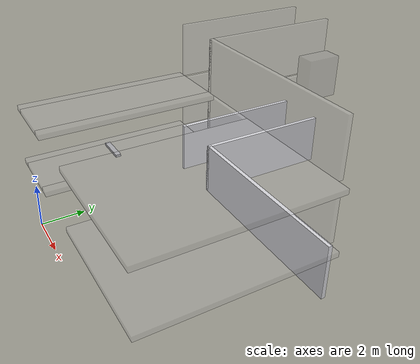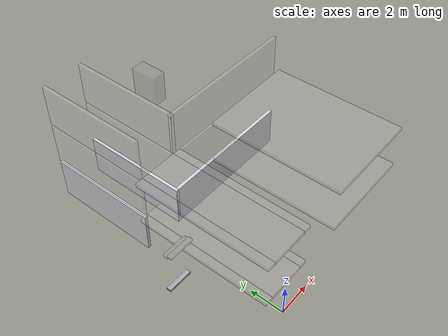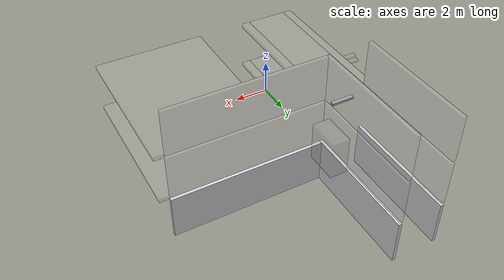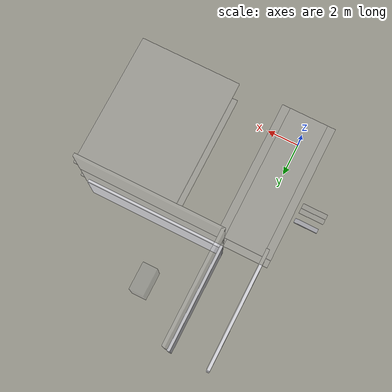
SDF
<sdf version="1.7">
 <model name="generated_building">
  <static>true</static>
  <link name="floor_0_room_0_corridor_wall_lower">
   <pose>-1.1900 11.0575 1.2250 0.0000 0.0000 0.0000</pose>
   <collision name="floor_0_room_0_corridor_wall_lower_collision">
    <geometry><box><size>0.1800 6.4150 2.4500</size></box></geometry>
   </collision>
   <visual name="floor_0_room_0_corridor_wall_lower_visual">
    <geometry><box><size>0.1800 6.4150 2.4500</size></box></geometry>
    <material><ambient>0.86 0.86 0.88 1</ambient><diffuse>0.86 0.86 0.88 1</diffuse></material>
   </visual>
   <gravity>false</gravity>
  </link>
  <link name="floor_0_room_1_corridor_wall_lower">
   <pose>1.1900 11.0575 1.2250 0.0000 0.0000 0.0000</pose>
   <collision name="floor_0_room_1_corridor_wall_lower_collision">
    <geometry><box><size>0.1800 6.4150 2.4500</size></box></geometry>
   </collision>
   <visual name="floor_0_room_1_corridor_wall_lower_visual">
    <geometry><box><size>0.1800 6.4150 2.4500</size></box></geometry>
    <material><ambient>0.86 0.86 0.88 1</ambient><diffuse>0.86 0.86 0.88 1</diffuse></material>
   </visual>
   <gravity>false</gravity>
  </link>
  <link name="floor_0_room_1_south_wall">
   <pose>5.3000 7.9400 1.2250 0.0000 0.0000 0.0000</pose>
   <collision name="floor_0_room_1_south_wall_collision">
    <geometry><box><size>8.4000 0.1800 2.4500</size></box></geometry>
   </collision>
   <visual name="floor_0_room_1_south_wall_visual">
    <geometry><box><size>8.4000 0.1800 2.4500</size></box></geometry>
    <material><ambient>0.86 0.86 0.88 1</ambient><diffuse>0.86 0.86 0.88 1</diffuse></material>
   </visual>
   <gravity>false</gravity>
  </link>
  <link name="slab_floor_1_2">
   <pose>-1.3300 3.9250 2.4900 0.0000 0.0000 0.0000</pose>
   <collision name="slab_floor_1_2_collision">
    <geometry><box><size>0.4600 7.8500 0.2200</size></box></geometry>
   </collision>
   <visual name="slab_floor_1_2_visual">
    <geometry><box><size>0.4600 7.8500 0.2200</size></box></geometry>
    <material><ambient>0.76 0.76 0.77 1</ambient><diffuse>0.76 0.76 0.77 1</diffuse></material>
    <transparency>0.80</transparency>
   </visual>
   <gravity>false</gravity>
  </link>
  <link name="slab_floor_1_3">
   <pose>0.0000 3.9250 2.4900 0.0000 0.0000 0.0000</pose>
   <collision name="slab_floor_1_3_collision">
    <geometry><box><size>2.2000 7.8500 0.2200</size></box></geometry>
   </collision>
   <visual name="slab_floor_1_3_visual">
    <geometry><box><size>2.2000 7.8500 0.2200</size></box></geometry>
    <material><ambient>0.76 0.76 0.77 1</ambient><diffuse>0.76 0.76 0.77 1</diffuse></material>
    <transparency>0.80</transparency>
   </visual>
   <gravity>false</gravity>
  </link>
  <link name="slab_floor_1_4">
   <pose>1.3300 3.9250 2.4900 0.0000 0.0000 0.0000</pose>
   <collision name="slab_floor_1_4_collision">
    <geometry><box><size>0.4600 7.8500 0.2200</size></box></geometry>
   </collision>
   <visual name="slab_floor_1_4_visual">
    <geometry><box><size>0.4600 7.8500 0.2200</size></box></geometry>
    <material><ambient>0.76 0.76 0.77 1</ambient><diffuse>0.76 0.76 0.77 1</diffuse></material>
    <transparency>0.80</transparency>
   </visual>
   <gravity>false</gravity>
  </link>
  <link name="slab_floor_1_5">
   <pose>7.0700 3.9250 2.4900 0.0000 0.0000 0.0000</pose>
   <collision name="slab_floor_1_5_collision">
    <geometry><box><size>5.8600 7.8500 0.2200</size></box></geometry>
   </collision>
   <visual name="slab_floor_1_5_visual">
    <geometry><box><size>5.8600 7.8500 0.2200</size></box></geometry>
    <material><ambient>0.76 0.76 0.77 1</ambient><diffuse>0.76 0.76 0.77 1</diffuse></material>
    <transparency>0.80</transparency>
   </visual>
   <gravity>false</gravity>
  </link>
  <link name="floor_1_room_0_corridor_wall_lower">
   <pose>-1.1900 11.0575 3.8250 0.0000 0.0000 0.0000</pose>
   <collision name="floor_1_room_0_corridor_wall_lower_collision">
    <geometry><box><size>0.1800 6.4150 2.4500</size></box></geometry>
   </collision>
   <visual name="floor_1_room_0_corridor_wall_lower_visual">
    <geometry><box><size>0.1800 6.4150 2.4500</size></box></geometry>
    <material><ambient>0.86 0.86 0.88 1</ambient><diffuse>0.86 0.86 0.88 1</diffuse></material>
    <transparency>0.80</transparency>
   </visual>
   <gravity>false</gravity>
  </link>
  <link name="floor_1_room_1_corridor_wall_lower">
   <pose>1.1900 11.0575 3.8250 0.0000 0.0000 0.0000</pose>
   <collision name="floor_1_room_1_corridor_wall_lower_collision">
    <geometry><box><size>0.1800 6.4150 2.4500</size></box></geometry>
   </collision>
   <visual name="floor_1_room_1_corridor_wall_lower_visual">
    <geometry><box><size>0.1800 6.4150 2.4500</size></box></geometry>
    <material><ambient>0.86 0.86 0.88 1</ambient><diffuse>0.86 0.86 0.88 1</diffuse></material>
    <transparency>0.80</transparency>
   </visual>
   <gravity>false</gravity>
  </link>
  <link name="floor_1_room_1_south_wall">
   <pose>5.3000 7.9400 3.8250 0.0000 0.0000 0.0000</pose>
   <collision name="floor_1_room_1_south_wall_collision">
    <geometry><box><size>8.4000 0.1800 2.4500</size></box></geometry>
   </collision>
   <visual name="floor_1_room_1_south_wall_visual">
    <geometry><box><size>8.4000 0.1800 2.4500</size></box></geometry>
    <material><ambient>0.86 0.86 0.88 1</ambient><diffuse>0.86 0.86 0.88 1</diffuse></material>
    <transparency>0.80</transparency>
   </visual>
   <gravity>false</gravity>
  </link>
  <link name="slab_floor_2_2">
   <pose>-1.3300 3.9250 5.0900 0.0000 0.0000 0.0000</pose>
   <collision name="slab_floor_2_2_collision">
    <geometry><box><size>0.4600 7.8500 0.2200</size></box></geometry>
   </collision>
   <visual name="slab_floor_2_2_visual">
    <geometry><box><size>0.4600 7.8500 0.2200</size></box></geometry>
    <material><ambient>0.76 0.76 0.77 1</ambient><diffuse>0.76 0.76 0.77 1</diffuse></material>
    <transparency>0.80</transparency>
   </visual>
   <gravity>false</gravity>
  </link>
  <link name="slab_floor_2_3">
   <pose>0.0000 3.9250 5.0900 0.0000 0.0000 0.0000</pose>
   <collision name="slab_floor_2_3_collision">
    <geometry><box><size>2.2000 7.8500 0.2200</size></box></geometry>
   </collision>
   <visual name="slab_floor_2_3_visual">
    <geometry><box><size>2.2000 7.8500 0.2200</size></box></geometry>
    <material><ambient>0.76 0.76 0.77 1</ambient><diffuse>0.76 0.76 0.77 1</diffuse></material>
    <transparency>0.80</transparency>
   </visual>
   <gravity>false</gravity>
  </link>
  <link name="slab_floor_2_4">
   <pose>1.3300 3.9250 5.0900 0.0000 0.0000 0.0000</pose>
   <collision name="slab_floor_2_4_collision">
    <geometry><box><size>0.4600 7.8500 0.2200</size></box></geometry>
   </collision>
   <visual name="slab_floor_2_4_visual">
    <geometry><box><size>0.4600 7.8500 0.2200</size></box></geometry>
    <material><ambient>0.76 0.76 0.77 1</ambient><diffuse>0.76 0.76 0.77 1</diffuse></material>
    <transparency>0.80</transparency>
   </visual>
   <gravity>false</gravity>
  </link>
  <link name="slab_floor_2_5">
   <pose>7.0700 3.9250 5.0900 0.0000 0.0000 0.0000</pose>
   <collision name="slab_floor_2_5_collision">
    <geometry><box><size>5.8600 7.8500 0.2200</size></box></geometry>
   </collision>
   <visual name="slab_floor_2_5_visual">
    <geometry><box><size>5.8600 7.8500 0.2200</size></box></geometry>
    <material><ambient>0.76 0.76 0.77 1</ambient><diffuse>0.76 0.76 0.77 1</diffuse></material>
    <transparency>0.80</transparency>
   </visual>
   <gravity>false</gravity>
  </link>
  <link name="floor_2_room_0_corridor_wall_lower">
   <pose>-1.1900 11.0575 6.4250 0.0000 0.0000 0.0000</pose>
   <collision name="floor_2_room_0_corridor_wall_lower_collision">
    <geometry><box><size>0.1800 6.4150 2.4500</size></box></geometry>
   </collision>
   <visual name="floor_2_room_0_corridor_wall_lower_visual">
    <geometry><box><size>0.1800 6.4150 2.4500</size></box></geometry>
    <material><ambient>0.86 0.86 0.88 1</ambient><diffuse>0.86 0.86 0.88 1</diffuse></material>
    <transparency>0.80</transparency>
   </visual>
   <gravity>false</gravity>
  </link>
  <link name="floor_2_room_1_corridor_wall_lower">
   <pose>1.1900 11.0575 6.4250 0.0000 0.0000 0.0000</pose>
   <collision name="floor_2_room_1_corridor_wall_lower_collision">
    <geometry><box><size>0.1800 6.4150 2.4500</size></box></geometry>
   </collision>
   <visual name="floor_2_room_1_corridor_wall_lower_visual">
    <geometry><box><size>0.1800 6.4150 2.4500</size></box></geometry>
    <material><ambient>0.86 0.86 0.88 1</ambient><diffuse>0.86 0.86 0.88 1</diffuse></material>
    <transparency>0.80</transparency>
   </visual>
   <gravity>false</gravity>
  </link>
  <link name="floor_2_room_1_south_wall">
   <pose>5.3000 7.9400 6.4250 0.0000 0.0000 0.0000</pose>
   <collision name="floor_2_room_1_south_wall_collision">
    <geometry><box><size>8.4000 0.1800 2.4500</size></box></geometry>
   </collision>
   <visual name="floor_2_room_1_south_wall_visual">
    <geometry><box><size>8.4000 0.1800 2.4500</size></box></geometry>
    <material><ambient>0.86 0.86 0.88 1</ambient><diffuse>0.86 0.86 0.88 1</diffuse></material>
    <transparency>0.80</transparency>
   </visual>
   <gravity>false</gravity>
  </link>
  <link name="floor_2_room_1_rack_c">
   <pose>3.6000 11.8075 6.1000 0.0000 0.0000 0.0000</pose>
   <collision name="floor_2_room_1_rack_c_collision">
    <geometry><box><size>0.8000 1.5000 1.8000</size></box></geometry>
   </collision>
   <visual name="floor_2_room_1_rack_c_visual">
    <geometry><box><size>0.8000 1.5000 1.8000</size></box></geometry>
    <material><ambient>0.56 0.57 0.60 1</ambient><diffuse>0.56 0.57 0.60 1</diffuse></material>
    <transparency>0.80</transparency>
   </visual>
   <gravity>false</gravity>
  </link>
  <link name="stair_flight_b_floor_0_step_0">
   <pose>-2.4850 4.5200 1.3650 0.0000 0.0000 0.0000</pose>
   <collision name="stair_flight_b_floor_0_step_0_collision">
    <geometry><box><size>1.4300 0.2600 0.1300</size></box></geometry>
   </collision>
   <visual name="stair_flight_b_floor_0_step_0_visual">
    <geometry><box><size>1.4300 0.2600 0.1300</size></box></geometry>
    <material><ambient>0.64 0.64 0.66 1</ambient><diffuse>0.64 0.64 0.66 1</diffuse></material>
   </visual>
   <gravity>false</gravity>
  </link>
  <link name="stair_flight_b_floor_1_step_0">
   <pose>-2.4850 4.5200 3.9650 0.0000 0.0000 0.0000</pose>
   <collision name="stair_flight_b_floor_1_step_0_collision">
    <geometry><box><size>1.4300 0.2600 0.1300</size></box></geometry>
   </collision>
   <visual name="stair_flight_b_floor_1_step_0_visual">
    <geometry><box><size>1.4300 0.2600 0.1300</size></box></geometry>
    <material><ambient>0.64 0.64 0.66 1</ambient><diffuse>0.64 0.64 0.66 1</diffuse></material>
    <transparency>0.80</transparency>
   </visual>
   <gravity>false</gravity>
  </link>
  <link name="stair_flight_b_floor_1_step_1">
   <pose>-2.4850 4.2600 4.0950 0.0000 0.0000 0.0000</pose>
   <collision name="stair_flight_b_floor_1_step_1_collision">
    <geometry><box><size>1.4300 0.2600 0.1300</size></box></geometry>
   </collision>
   <visual name="stair_flight_b_floor_1_step_1_visual">
    <geometry><box><size>1.4300 0.2600 0.1300</size></box></geometry>
    <material><ambient>0.64 0.64 0.66 1</ambient><diffuse>0.64 0.64 0.66 1</diffuse></material>
    <transparency>0.80</transparency>
   </visual>
   <gravity>false</gravity>
  </link>
 </model>
</sdf>
